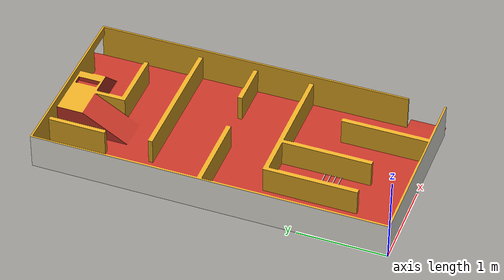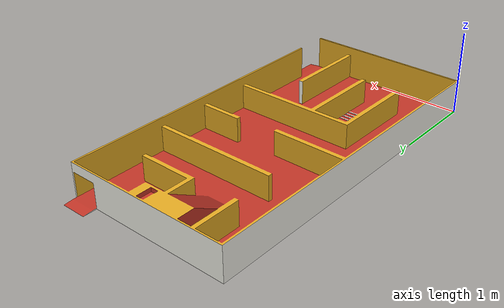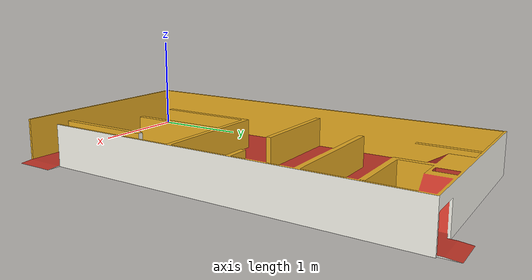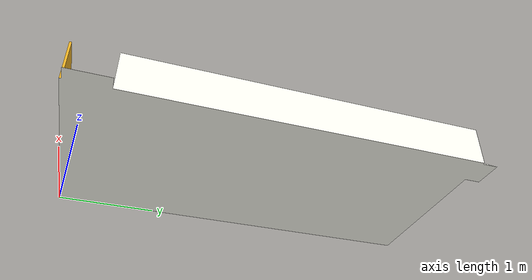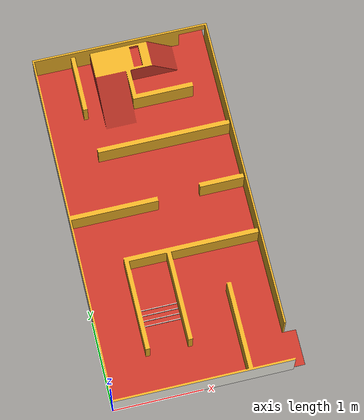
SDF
<?xml version="1.0" ?>
<sdf version="1.4">
    <model name="game_field">
        <static>true</static>
        <link name="link">
            <collision name="collision">
                <geometry>
                    <mesh>
                    <scale>0.001 0.001 0.001</scale>
                    <uri>model://pnp_game_field/meshes/game_field.dae</uri>
                    </mesh>
                </geometry>
            </collision>
            <visual name="visual">
                <geometry>
                    <mesh>
                    <scale>0.001 0.001 0.001</scale>
                    <uri>model://pnp_game_field/meshes/game_field.dae</uri>
                    </mesh>
                </geometry>
            </visual>
        </link>
    </model>
</sdf>
